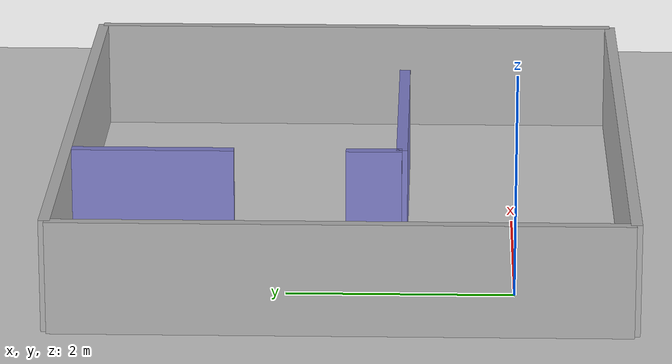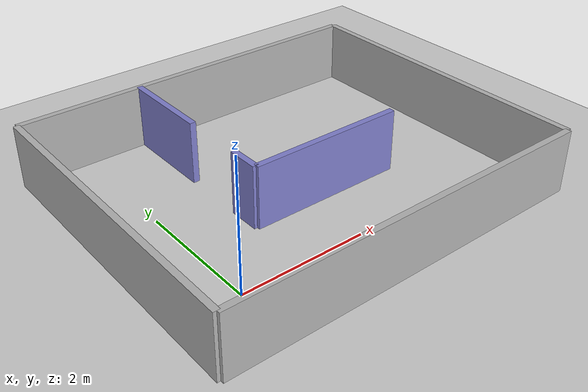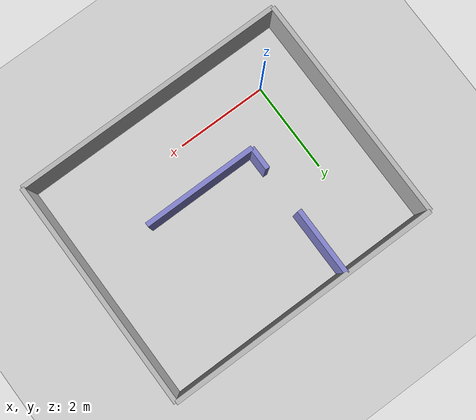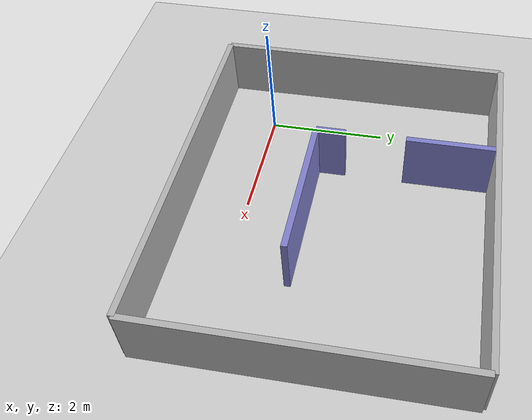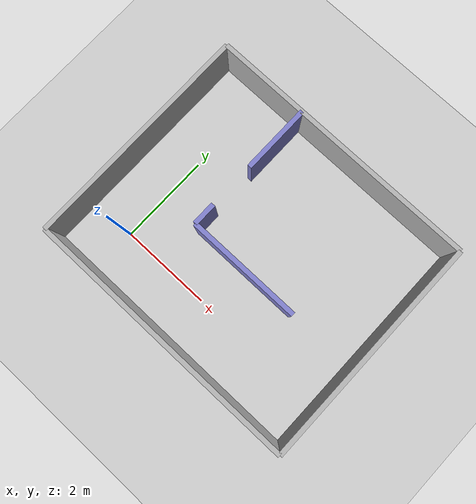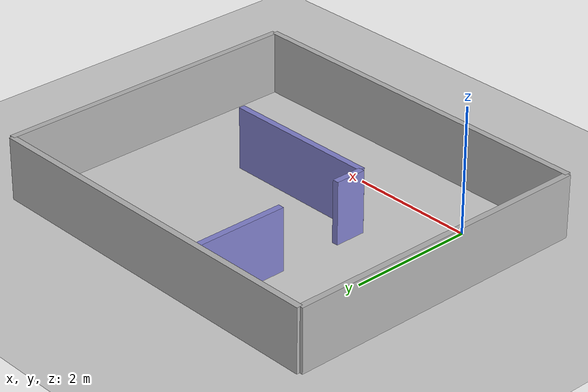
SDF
<?xml version="1.0" ?>
<sdf version="1.5">
  <world name="corridor_gap">

    <!-- 조명 + 바닥 -->
    <include><uri>model://sun</uri></include>
    <include><uri>model://ground_plane</uri></include>

    <!-- ===== 외벽 (6m x 5m) ===== -->

    <!-- 하단 벽 (y=-1) -->
    <model name="wall_bottom">
      <static>true</static>
      <pose>2 -1 0.5 0 0 0</pose>
      <link name="link">
        <collision name="collision">
          <geometry><box><size>6 0.1 1</size></box></geometry>
        </collision>
        <visual name="visual">
          <geometry><box><size>6 0.1 1</size></box></geometry>
          <material><ambient>0.7 0.7 0.7 1</ambient></material>
        </visual>
      </link>
    </model>

    <!-- 상단 벽 (y=4) -->
    <model name="wall_top">
      <static>true</static>
      <pose>2 4 0.5 0 0 0</pose>
      <link name="link">
        <collision name="collision">
          <geometry><box><size>6 0.1 1</size></box></geometry>
        </collision>
        <visual name="visual">
          <geometry><box><size>6 0.1 1</size></box></geometry>
          <material><ambient>0.7 0.7 0.7 1</ambient></material>
        </visual>
      </link>
    </model>

    <!-- 좌측 벽 (x=-1) -->
    <model name="wall_left">
      <static>true</static>
      <pose>-1 1.5 0.5 0 0 0</pose>
      <link name="link">
        <collision name="collision">
          <geometry><box><size>0.1 5 1</size></box></geometry>
        </collision>
        <visual name="visual">
          <geometry><box><size>0.1 5 1</size></box></geometry>
          <material><ambient>0.7 0.7 0.7 1</ambient></material>
        </visual>
      </link>
    </model>

    <!-- 우측 벽 (x=5) -->
    <model name="wall_right">
      <static>true</static>
      <pose>5 1.5 0.5 0 0 0</pose>
      <link name="link">
        <collision name="collision">
          <geometry><box><size>0.1 5 1</size></box></geometry>
        </collision>
        <visual name="visual">
          <geometry><box><size>0.1 5 1</size></box></geometry>
          <material><ambient>0.7 0.7 0.7 1</ambient></material>
        </visual>
      </link>
    </model>

    <!-- ===== 내벽 (ㄱ자 복도 + 문) ===== -->

    <!-- 내벽 세로 상단 (x=1, y=2.5~4.0) — 문 위쪽 -->
    <model name="inner_wall_vertical_top">
      <static>true</static>
      <pose>1 3.25 0.5 0 0 0</pose>
      <link name="link">
        <collision name="collision">
          <geometry><box><size>0.1 1.5 1</size></box></geometry>
        </collision>
        <visual name="visual">
          <geometry><box><size>0.1 1.5 1</size></box></geometry>
          <material><ambient>0.5 0.5 0.8 1</ambient></material>
        </visual>
      </link>
    </model>

    <!-- 문 (y=1.5~2.5) — 빈 구간 1.0m -->

    <!-- 내벽 세로 하단 (x=1, y=1.0~1.5) — 문 아래쪽 -->
    <model name="inner_wall_vertical_bottom">
      <static>true</static>
      <pose>1 1.25 0.5 0 0 0</pose>
      <link name="link">
        <collision name="collision">
          <geometry><box><size>0.1 0.5 1</size></box></geometry>
        </collision>
        <visual name="visual">
          <geometry><box><size>0.1 0.5 1</size></box></geometry>
          <material><ambient>0.5 0.5 0.8 1</ambient></material>
        </visual>
      </link>
    </model>

    <!-- 내벽 가로 (x=1~3.5, y=1) -->
    <model name="inner_wall_horizontal">
      <static>true</static>
      <pose>2.25 1 0.5 0 0 0</pose>
      <link name="link">
        <collision name="collision">
          <geometry><box><size>2.5 0.1 1</size></box></geometry>
        </collision>
        <visual name="visual">
          <geometry><box><size>2.5 0.1 1</size></box></geometry>
          <material><ambient>0.5 0.5 0.8 1</ambient></material>
        </visual>
      </link>
    </model>

  </world>
</sdf>
